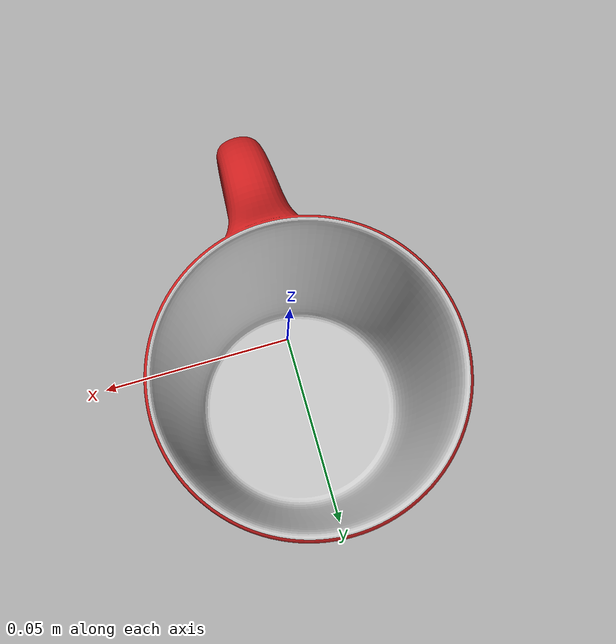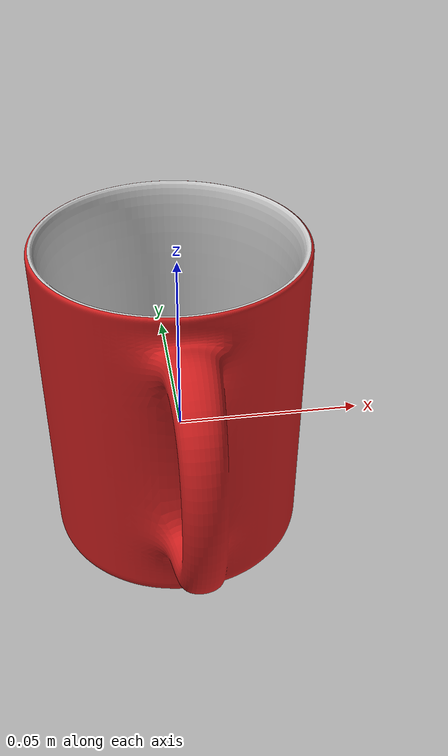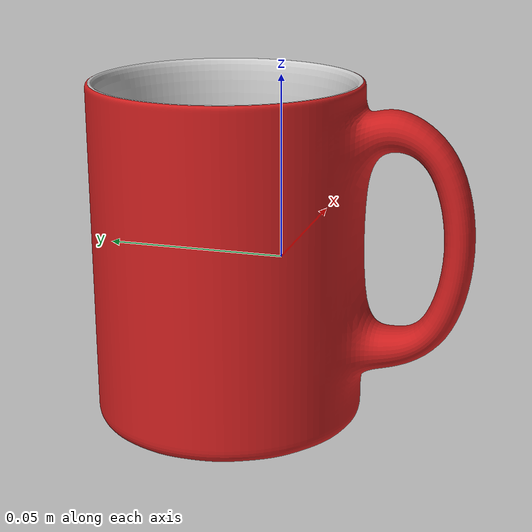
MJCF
<mujoco model="mug_75">
  <asset>
    <mesh file="visual/model_normalized_0.obj" name="model_normalized_0_vis" scale="0.105 0.105 0.105" refquat="1.0 0.0 0.0 0.0"/>
    <mesh file="visual/model_normalized_1.obj" name="model_normalized_1_vis" scale="0.105 0.105 0.105" refquat="1.0 0.0 0.0 0.0"/>
    <material name="Mat.002" specular="0.1" shininess="0.2" rgba="0.800000 0.120000 0.120000 1.0" emission="0.15"/>
    <material name="material.078" specular="0.1" shininess="0.2" rgba="0.800000 0.800000 0.800000 1.0" emission="0.15"/>
    <mesh file="collision/collision_mesh_collision_0.obj" name="mug_collision_mesh_0" scale="0.105 0.105 0.105" refquat="1.0 0.0 0.0 0.0"/>
    <mesh file="collision/collision_mesh_collision_1.obj" name="mug_collision_mesh_1" scale="0.105 0.105 0.105" refquat="1.0 0.0 0.0 0.0"/>
    <mesh file="collision/collision_mesh_collision_2.obj" name="mug_collision_mesh_2" scale="0.105 0.105 0.105" refquat="1.0 0.0 0.0 0.0"/>
    <mesh file="collision/collision_mesh_collision_3.obj" name="mug_collision_mesh_3" scale="0.105 0.105 0.105" refquat="1.0 0.0 0.0 0.0"/>
    <mesh file="collision/collision_mesh_collision_4.obj" name="mug_collision_mesh_4" scale="0.105 0.105 0.105" refquat="1.0 0.0 0.0 0.0"/>
    <mesh file="collision/collision_mesh_collision_5.obj" name="mug_collision_mesh_5" scale="0.105 0.105 0.105" refquat="1.0 0.0 0.0 0.0"/>
    <mesh file="collision/collision_mesh_collision_6.obj" name="mug_collision_mesh_6" scale="0.105 0.105 0.105" refquat="1.0 0.0 0.0 0.0"/>
    <mesh file="collision/collision_mesh_collision_7.obj" name="mug_collision_mesh_7" scale="0.105 0.105 0.105" refquat="1.0 0.0 0.0 0.0"/>
    <mesh file="collision/collision_mesh_collision_8.obj" name="mug_collision_mesh_8" scale="0.105 0.105 0.105" refquat="1.0 0.0 0.0 0.0"/>
    <mesh file="collision/collision_mesh_collision_9.obj" name="mug_collision_mesh_9" scale="0.105 0.105 0.105" refquat="1.0 0.0 0.0 0.0"/>
    <mesh file="collision/collision_mesh_collision_10.obj" name="mug_collision_mesh_10" scale="0.105 0.105 0.105" refquat="1.0 0.0 0.0 0.0"/>
    <mesh file="collision/collision_mesh_collision_11.obj" name="mug_collision_mesh_11" scale="0.105 0.105 0.105" refquat="1.0 0.0 0.0 0.0"/>
    <mesh file="collision/collision_mesh_collision_12.obj" name="mug_collision_mesh_12" scale="0.105 0.105 0.105" refquat="1.0 0.0 0.0 0.0"/>
    <mesh file="collision/collision_mesh_collision_13.obj" name="mug_collision_mesh_13" scale="0.105 0.105 0.105" refquat="1.0 0.0 0.0 0.0"/>
    <mesh file="collision/collision_mesh_collision_14.obj" name="mug_collision_mesh_14" scale="0.105 0.105 0.105" refquat="1.0 0.0 0.0 0.0"/>
    <mesh file="collision/collision_mesh_collision_15.obj" name="mug_collision_mesh_15" scale="0.105 0.105 0.105" refquat="1.0 0.0 0.0 0.0"/>
  </asset>
  <default>
    <default class="region">
      <geom group="1" conaffinity="0" contype="0" rgba="0 1 0 0" density="0"/>
    </default>
    <default class="collision">
      <geom group="3" rgba="0.5 0 0 0.5" density="0"/>
    </default>
  </default>
  <worldbody>
    <body>
      <body name="object">
        <geom density="0" friction="1.2 0.05 0.001" type="mesh" mesh="model_normalized_0_vis" conaffinity="0" contype="0" group="1" material="material.078" mass="0.3"/>
        <geom density="0" friction="1.2 0.05 0.001" type="mesh" mesh="model_normalized_1_vis" conaffinity="0" contype="0" group="1" material="Mat.002"/>
        <geom class="region" name="reg_bbox" type="box" pos="3.1500000012563146e-09 0.0 4.6619999999941706e-07" size="0.0371974533 0.0525 0.047977873649999996" density="0"/>        <geom mesh="mug_collision_mesh_0" type="mesh" class="collision" density="0"/>
        <geom mesh="mug_collision_mesh_1" type="mesh" class="collision" density="0"/>
        <geom mesh="mug_collision_mesh_2" type="mesh" class="collision" density="0"/>
        <geom mesh="mug_collision_mesh_3" type="mesh" class="collision" density="0"/>
        <geom mesh="mug_collision_mesh_4" type="mesh" class="collision" density="0"/>
        <geom mesh="mug_collision_mesh_5" type="mesh" class="collision" density="0"/>
        <geom mesh="mug_collision_mesh_6" type="mesh" class="collision" density="0"/>
        <geom mesh="mug_collision_mesh_7" type="mesh" class="collision" density="0"/>
        <geom mesh="mug_collision_mesh_8" type="mesh" class="collision" density="0"/>
        <geom mesh="mug_collision_mesh_9" type="mesh" class="collision" density="0"/>
        <geom mesh="mug_collision_mesh_10" type="mesh" class="collision" density="0"/>
        <geom mesh="mug_collision_mesh_11" type="mesh" class="collision" density="0"/>
        <geom mesh="mug_collision_mesh_12" type="mesh" class="collision" density="0"/>
        <geom mesh="mug_collision_mesh_13" type="mesh" class="collision" density="0"/>
        <geom mesh="mug_collision_mesh_14" type="mesh" class="collision" density="0"/>
        <geom mesh="mug_collision_mesh_15" type="mesh" class="collision" density="0"/>
        <geom rgba="0 0 0 0" size="0.036 0.036" pos="0 0.016 0.002" type="cylinder" name="liquid" class="region" density="0"/>        <geom rgba="0 0 0 0 " size="0.028 0.044" pos="0 0.016 0.002" type="cylinder" name="reg_int" class="region" density="0"/>      </body>
    </body>
  </worldbody>
</mujoco>
